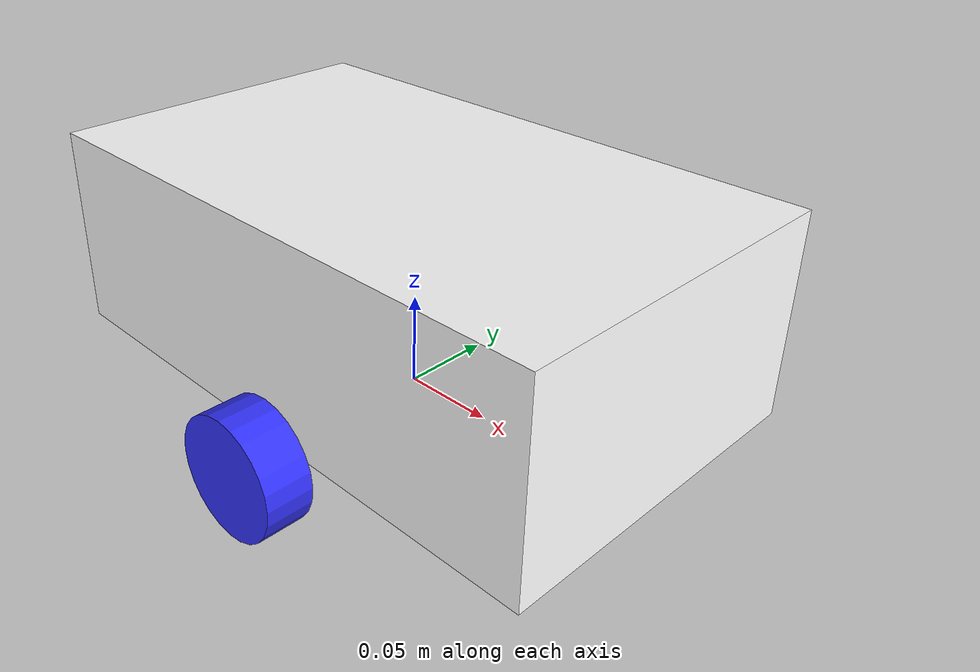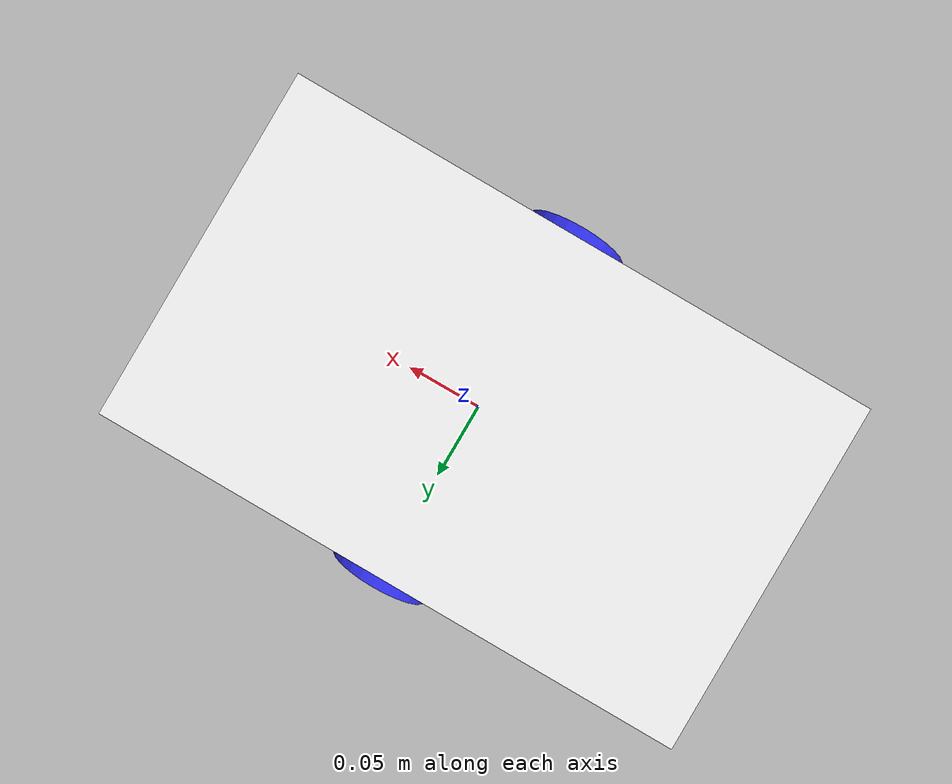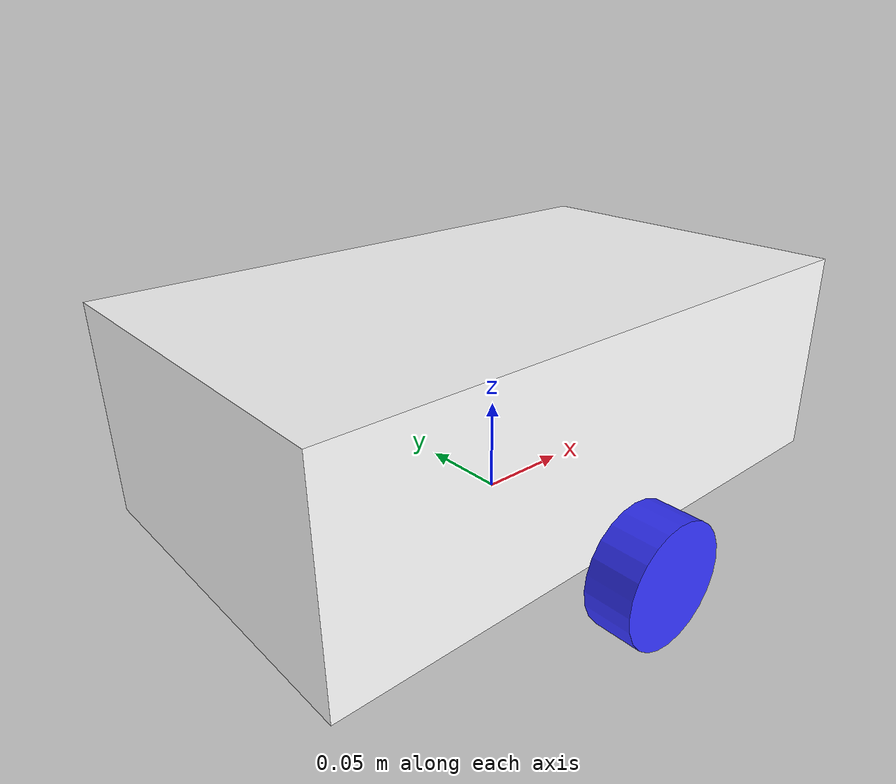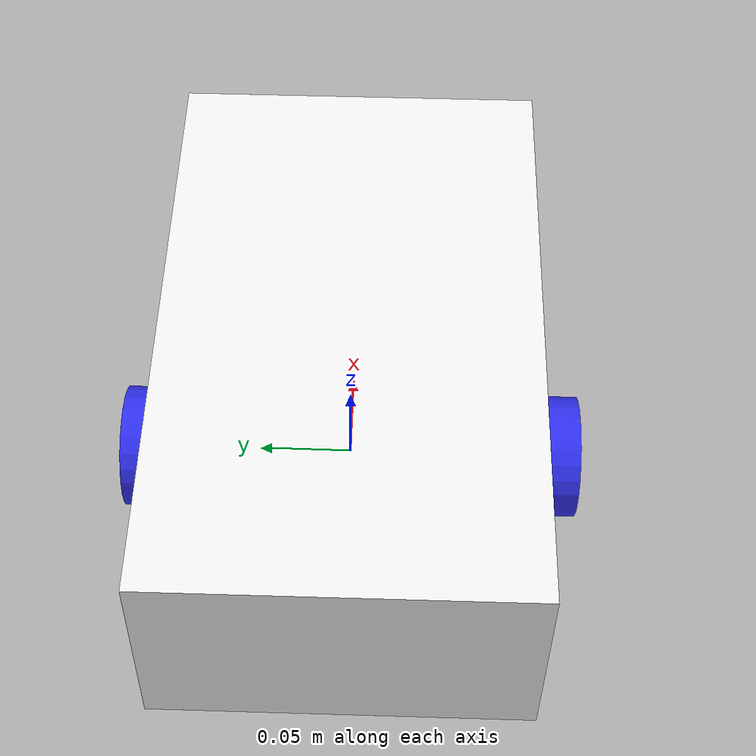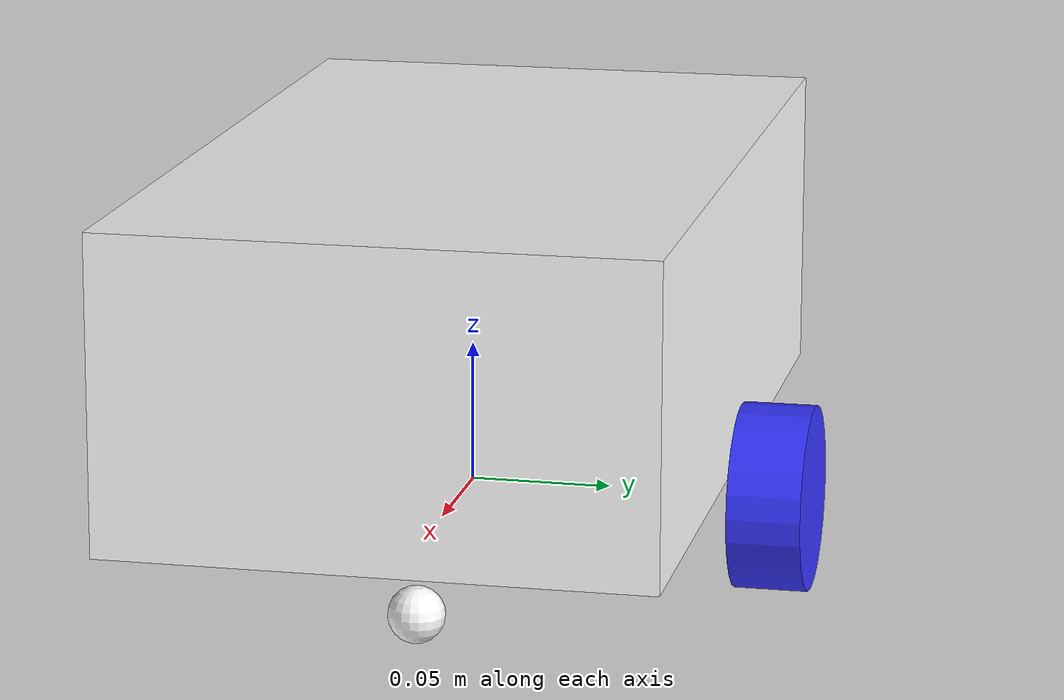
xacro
<?xml version="1.0"?>
<robot xmlns:xacro="http://www.ros.org/wiki/xacro">

  <xacro:include filename="inertial_macros.xacro"/>

  <xacro:property name="chassis_length" value="0.32"/>
  <xacro:property name="chassis_width" value="0.19"/>
  <xacro:property name="chassis_height" value="0.11"/>
  <xacro:property name="chassis_mass" value="1.0"/>
  <xacro:property name="rpy_x" value="1.57" />
  <xacro:property name="wheel_radius" value="0.033"/>
  <xacro:property name="wheel_thickness" value="0.026"/>
  <xacro:property name="wheel_mass" value="0.05"/>
  <xacro:property name="wheel_offset_x" value="0.135"/>
  <xacro:property name="wheel_offset_y" value="0.110"/>
  <xacro:property name="wheel_offset_z" value="0.01"/>
  <xacro:property name="caster_wheel_radius" value="0.01"/>
  <xacro:property name="caster_wheel_mass" value="0.01"/>
  <xacro:property name="caster_wheel_offset_x" value="0.075"/>
  <xacro:property name="caster_wheel_offset_z" value="${wheel_offset_z - wheel_radius + caster_wheel_radius}"/>

  <material name="white">
    <color rgba="1 1 1 1" />
  </material>

  <material name="orange">
    <color rgba="1 0.3 0.1 1" />
  </material>

  <material name="blue">
    <color rgba="0.2 0.2 1 1" />
  </material>

  <material name="black">
    <color rgba="0 0 0 1" />
  </material>

  <!-- base_link should be in the middle of the 2 wheels -->
  <link name="base_link">

  </link>

  <!-- BASE_FOOTPRINT LINK -->

  <joint name="base_footprint_joint" type="fixed">
      <parent link="base_link"/>
      <child link="base_footprint"/>
      <origin xyz="0 0 0" rpy="0 0 0"/>
  </joint>

  <link name="base_footprint">
  </link>

  <!-- CHASSIS LINK -->

  <joint name="chassis_joint" type="fixed">
      <parent link="base_link"/>
      <child link="chassis"/>

      <!-- origin is behind at the chassis -->
      <origin xyz="${-wheel_offset_x} 0 ${-wheel_offset_z}"/>
  </joint>

  <link name="chassis">
    <visual>
      <origin xyz="0.13 0 0.075"/>
      <geometry>
        <box size="0.32 0.19 0.11" />
      </geometry>
      <material name="white"/>
    </visual>

    <collision>
      <origin xyz="0.13 0 0.075"/>
      <geometry>
        <box size="0.32 0.19 0.11" />
      </geometry>
    </collision>

    <xacro:inertial_box mass="0.5" x="${chassis_length}" y="${chassis_width}" z="${chassis_height}">
      <origin xyz="${chassis_length/2} 0 ${chassis_height/2}" rpy="0 0 0"/>
    </xacro:inertial_box>
  </link>

  <!-- LEFT WHEEL LINK -->

  <link name="left_wheel">
    <visual>
      <geometry>
        <cylinder radius="${wheel_radius}" length="${wheel_thickness}"/>
      </geometry>
      <material name="blue"/>
    </visual>
    <collision>
      <geometry>
        <sphere radius="${wheel_radius}"/>
      </geometry>
    </collision>
    <xacro:inertial_cylinder mass="${wheel_mass}" length="${wheel_thickness}" radius="${wheel_radius}">
        <origin xyz="0 0 0" rpy="0 0 0"/>
    </xacro:inertial_cylinder>
  </link>

  <joint name="left_wheel_joint" type="continuous">
    <parent link="base_link"/>
    <child link="left_wheel"/>
    <origin xyz="0 ${wheel_offset_y} 0" rpy="-${rpy_x} 0 0"/>
    <axis xyz="0 0 1"/>
  </joint>

  <!-- RIGHT WHEEL LINK -->
  <link name="right_wheel">
    <visual>
      <geometry>
        <cylinder radius="${wheel_radius}" length="${wheel_thickness}"/>
      </geometry>
      <material name="blue"/>
    </visual>
    <collision>
      <geometry>
        <sphere radius="${wheel_radius}"/>
      </geometry>
    </collision>
    <xacro:inertial_cylinder mass="${wheel_mass}" length="${wheel_thickness}" radius="${wheel_radius}">
      <origin xyz="0 0 0" rpy="0 0 0"/>
    </xacro:inertial_cylinder>
  </link>

  <joint name="right_wheel_joint" type="continuous">
    <parent link="base_link"/>
    <child link="right_wheel"/>
    <origin xyz="0 ${-wheel_offset_y} 0" rpy="${rpy_x} 0 0"/>
    <axis xyz="0 0 -1"/>
  </joint>

  <!-- TOP CASTER WHEEL LINK -->
  <joint name="top_caster_wheel_joint" type="fixed">
    <parent link="chassis"/>
    <child link="top_caster_wheel"/>
    <origin xyz="${caster_wheel_offset_x / 2} 0 ${caster_wheel_offset_z}"/>
  </joint>

  <link name="top_caster_wheel">
    <visual>
      <geometry>
        <sphere radius="${caster_wheel_radius}"/>
      </geometry>
      <material name="white"/>
    </visual>
    <collision>
      <geometry>
        <sphere radius="${caster_wheel_radius}"/>
      </geometry>
    </collision>
    <xacro:inertial_sphere mass="${caster_wheel_mass}" radius="${caster_wheel_radius}">
        <origin xyz="0 0 0" rpy="0 0 0"/>
    </xacro:inertial_sphere>
  </link>

  <!-- BOTTOM CASTER WHEEL LINK -->
  <joint name="bottom_caster_wheel_joint" type="fixed">
    <parent link="chassis"/>
    <child link="bottom_caster_wheel"/>
    <origin xyz="${caster_wheel_offset_x * 3} 0 ${caster_wheel_offset_z}"/>
  </joint>

  <link name="bottom_caster_wheel">
    <visual>
      <geometry>
        <sphere radius="${caster_wheel_radius}"/>
      </geometry>
      <material name="white"/>
    </visual>
    <collision>
      <geometry>
        <sphere radius="${caster_wheel_radius}"/>
      </geometry>
    </collision>
    <xacro:inertial_sphere mass="${caster_wheel_mass}" radius="${caster_wheel_radius}">
        <origin xyz="0 0 0" rpy="0 0 0"/>
    </xacro:inertial_sphere>
  </link>
</robot>
